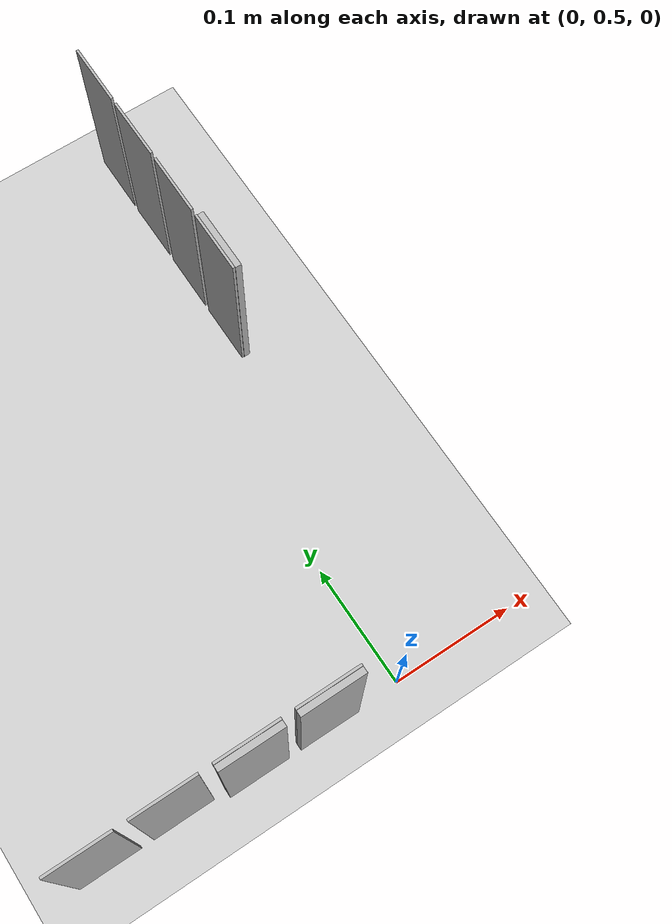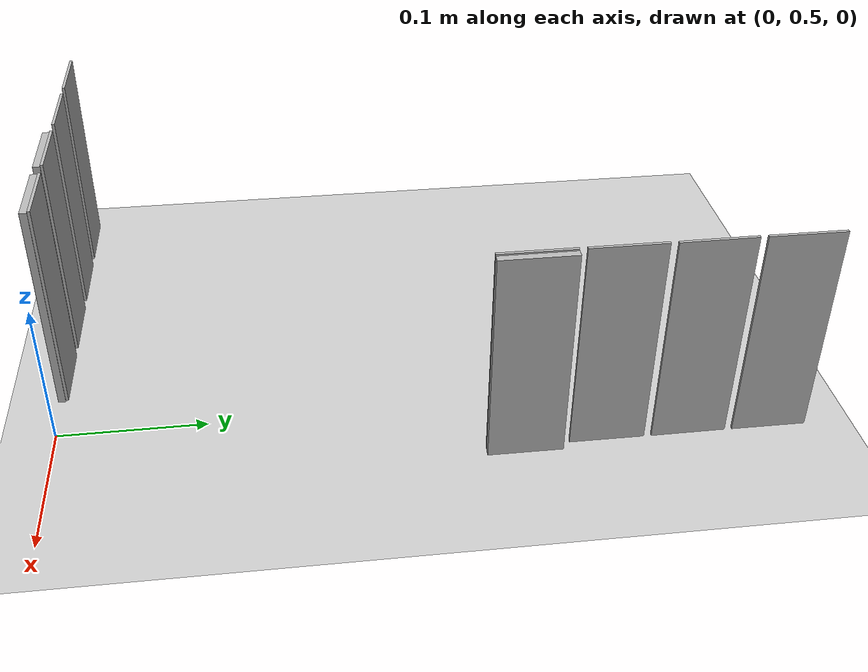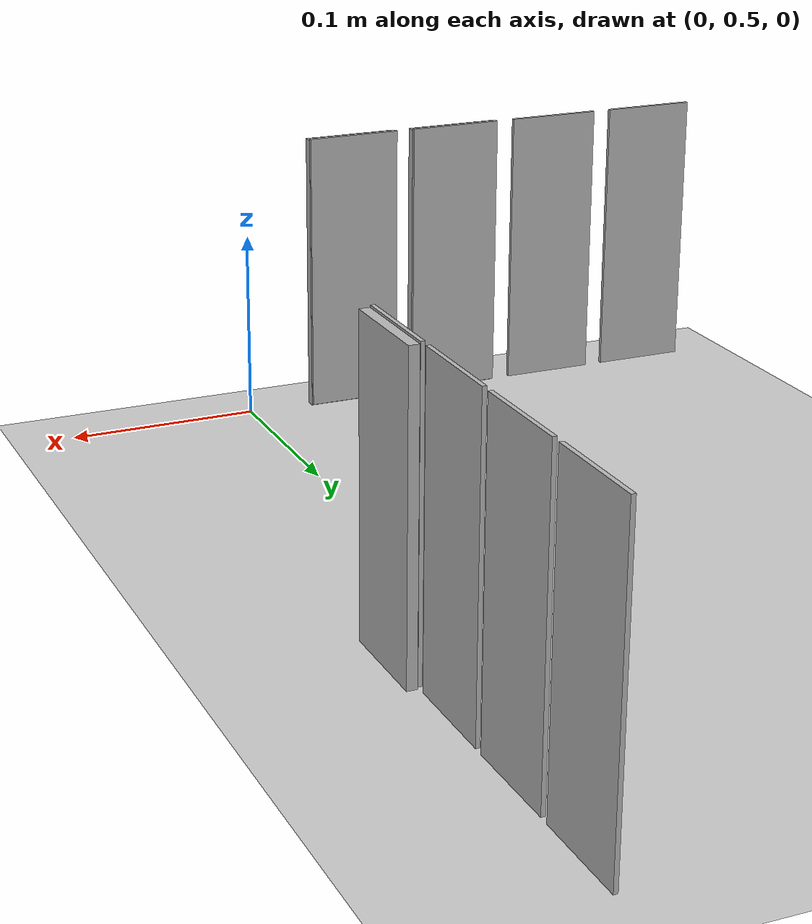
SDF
<sdf version="1.7">
 <world name="default">
  <model name="ground_plane">
   <static>1</static>
   <link name="link">
    <collision name="collision">
     <geometry><plane><normal>0 0 1</normal><size>100 100</size></plane></geometry>
     <surface><friction><ode><mu>100</mu><mu2>50</mu2></ode></friction></surface>
    </collision>
    <visual name="visual">
     <cast_shadows>0</cast_shadows>
     <geometry><plane><normal>0 0 1</normal><size>100 100</size></plane></geometry>
     <material>
      <script><uri>file://media/materials/scripts/gazebo.material</uri><name>Gazebo/Grey</name></script>
     </material>
    </visual>
   </link>
  </model>
  <model name="cm10">
   <static>1</static>
   <pose>0.05 0.805 0.075 0 -0 1.57</pose>
   <link name="cm10">
    <collision name="collision"><geometry><box><size>0.05 0.005 0.15</size></box></geometry></collision>
    <visual name="visual">
     <geometry><box><size>0.05 0.005 0.15</size></box></geometry>
     <material>
      <script>
       <uri>model://cm10/materials/scripts/cm10.material</uri>
       <uri>model://cm10/materials/textures/cm10.png</uri>
       <name>cm10</name>
      </script>
     </material>
    </visual>
   </link>
  </model>
  <model name="cm16">
   <static>1</static>
   <pose>-0.12 0.5 0.075 0 -0 0</pose>
   <link name="cm16">
    <collision name="collision"><geometry><box><size>0.05 0.005 0.15</size></box></geometry></collision>
    <visual name="visual">
     <geometry><box><size>0.05 0.005 0.15</size></box></geometry>
     <material>
      <script>
       <uri>model://cm16/materials/scripts/cm16.material</uri>
       <uri>model://cm16/materials/textures/cm16.png</uri>
       <name>cm16</name>
      </script>
     </material>
    </visual>
   </link>
  </model>
  <model name="cm15">
   <static>1</static>
   <pose>-0.06 0.5 0.075 0 -0 0</pose>
   <link name="cm15">
    <collision name="collision"><geometry><box><size>0.05 0.005 0.15</size></box></geometry></collision>
    <visual name="visual">
     <geometry><box><size>0.05 0.005 0.15</size></box></geometry>
     <material>
      <script>
       <uri>model://cm15/materials/scripts/cm15.material</uri>
       <uri>model://cm15/materials/textures/cm15.png</uri>
       <name>cm15</name>
      </script>
     </material>
    </visual>
   </link>
  </model>
  <model name="thin_plate_9">
   <static>0</static>
   <link name="plate_link">
    <pose>0 0 0.075 0 -0 0</pose>
    <inertial>
     <mass>0.03</mass>
     <inertia>
      <ixx>0.00039375</ixx>
      <iyy>0.0003375</iyy>
      <izz>6.375e-05</izz>
      <ixy>0</ixy>
      <ixz>0</ixz>
      <iyz>0</iyz>
     </inertia>
    </inertial>
    <collision name="plate_collision"><geometry><box><size>0.002 0.05 0.15</size></box></geometry></collision>
    <visual name="plate_visual"><geometry><box><size>0.002 0.05 0.15</size></box></geometry></visual>
   </link>
   <pose>0.046363 0.805 0.000997 1e-06 4.3e-05 -0.001118</pose>
  </model>
  <model name="thin_plate_10">
   <static>0</static>
   <link name="plate_link">
    <pose>0 0 0.075 0 -0 0</pose>
    <inertial>
     <mass>0.03</mass>
     <inertia>
      <ixx>0.00039375</ixx>
      <iyy>0.0003375</iyy>
      <izz>6.375e-05</izz>
      <ixy>0</ixy>
      <ixz>0</ixz>
      <iyz>0</iyz>
     </inertia>
    </inertial>
    <collision name="plate_collision"><geometry><box><size>0.002 0.05 0.15</size></box></geometry></collision>
    <visual name="plate_visual"><geometry><box><size>0.002 0.05 0.15</size></box></geometry></visual>
   </link>
   <pose>0.046491 0.860022 0.000995 3e-06 4.3e-05 -0.000907</pose>
  </model>
  <model name="thin_plate_11">
   <static>0</static>
   <link name="plate_link">
    <pose>0 0 0.075 0 -0 0</pose>
    <inertial>
     <mass>0.03</mass>
     <inertia>
      <ixx>0.00039375</ixx>
      <iyy>0.0003375</iyy>
      <izz>6.375e-05</izz>
      <ixy>0</ixy>
      <ixz>0</ixz>
      <iyz>0</iyz>
     </inertia>
    </inertial>
    <collision name="plate_collision"><geometry><box><size>0.002 0.05 0.15</size></box></geometry></collision>
    <visual name="plate_visual"><geometry><box><size>0.002 0.05 0.15</size></box></geometry></visual>
   </link>
   <pose>0.046492 0.915042 0.000998 1e-06 4.3e-05 0.006145</pose>
  </model>
  <model name="thin_plate_12">
   <static>0</static>
   <link name="plate_link">
    <pose>0 0 0.075 0 -0 0</pose>
    <inertial>
     <mass>0.03</mass>
     <inertia>
      <ixx>0.00039375</ixx>
      <iyy>0.0003375</iyy>
      <izz>6.375e-05</izz>
      <ixy>0</ixy>
      <ixz>0</ixz>
      <iyz>0</iyz>
     </inertia>
    </inertial>
    <collision name="plate_collision"><geometry><box><size>0.002 0.05 0.15</size></box></geometry></collision>
    <visual name="plate_visual"><geometry><box><size>0.002 0.05 0.15</size></box></geometry></visual>
   </link>
   <pose>0.046492 0.970029 0.000995 3e-06 4.3e-05 -0.000842</pose>
  </model>
  <model name="thin_plate_13">
   <static>0</static>
   <link name="plate_link">
    <pose>0 0 0.075 0 -0 0</pose>
    <inertial>
     <mass>0.03</mass>
     <inertia>
      <ixx>0.00039375</ixx>
      <iyy>0.0003375</iyy>
      <izz>6.375e-05</izz>
      <ixy>0</ixy>
      <ixz>0</ixz>
      <iyz>0</iyz>
     </inertia>
    </inertial>
    <collision name="plate_collision"><geometry><box><size>0.002 0.05 0.15</size></box></geometry></collision>
    <visual name="plate_visual"><geometry><box><size>0.002 0.05 0.15</size></box></geometry></visual>
   </link>
   <pose>-0.24 0.503511 0.000995 3e-06 4.3e-05 1.57042</pose>
  </model>
  <model name="thin_plate_14">
   <static>0</static>
   <link name="plate_link">
    <pose>0 0 0.075 0 -0 0</pose>
    <inertial>
     <mass>0.03</mass>
     <inertia>
      <ixx>0.00039375</ixx>
      <iyy>0.0003375</iyy>
      <izz>6.375e-05</izz>
      <ixy>0</ixy>
      <ixz>0</ixz>
      <iyz>0</iyz>
     </inertia>
    </inertial>
    <collision name="plate_collision"><geometry><box><size>0.002 0.05 0.15</size></box></geometry></collision>
    <visual name="plate_visual"><geometry><box><size>0.002 0.05 0.15</size></box></geometry></visual>
   </link>
   <pose>-0.18 0.503516 0.000994 4e-06 4.3e-05 1.57018</pose>
  </model>
  <model name="thin_plate_16">
   <static>0</static>
   <link name="plate_link">
    <pose>0 0 0.075 0 -0 0</pose>
    <inertial>
     <mass>0.03</mass>
     <inertia>
      <ixx>0.00039375</ixx>
      <iyy>0.0003375</iyy>
      <izz>6.375e-05</izz>
      <ixy>0</ixy>
      <ixz>0</ixz>
      <iyz>0</iyz>
     </inertia>
    </inertial>
    <collision name="plate_collision"><geometry><box><size>0.002 0.05 0.15</size></box></geometry></collision>
    <visual name="plate_visual"><geometry><box><size>0.002 0.05 0.15</size></box></geometry></visual>
   </link>
   <pose>-0.059999 0.503552 0.000994 4e-06 4.3e-05 -1.57085</pose>
  </model>
  <model name="thin_plate_15">
   <static>0</static>
   <link name="plate_link">
    <pose>0 0 0.075 0 -0 0</pose>
    <inertial>
     <mass>0.03</mass>
     <inertia>
      <ixx>0.00039375</ixx>
      <iyy>0.0003375</iyy>
      <izz>6.375e-05</izz>
      <ixy>0</ixy>
      <ixz>0</ixz>
      <iyz>0</iyz>
     </inertia>
    </inertial>
    <collision name="plate_collision"><geometry><box><size>0.002 0.05 0.15</size></box></geometry></collision>
    <visual name="plate_visual"><geometry><box><size>0.002 0.05 0.15</size></box></geometry></visual>
   </link>
   <pose>-0.12 0.503533 0.000994 4e-06 4.3e-05 1.56976</pose>
  </model>
 </world>
</sdf>
